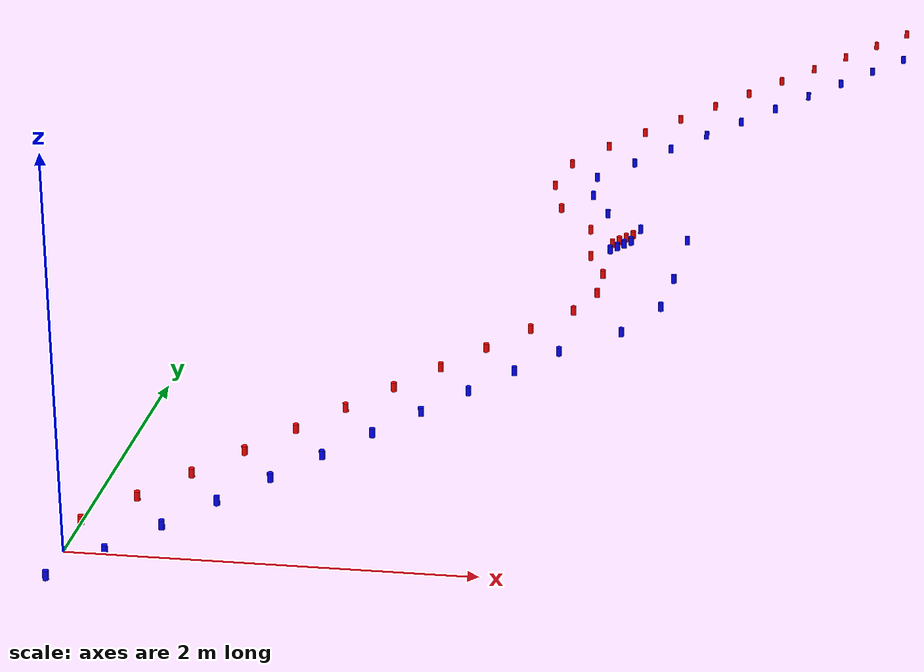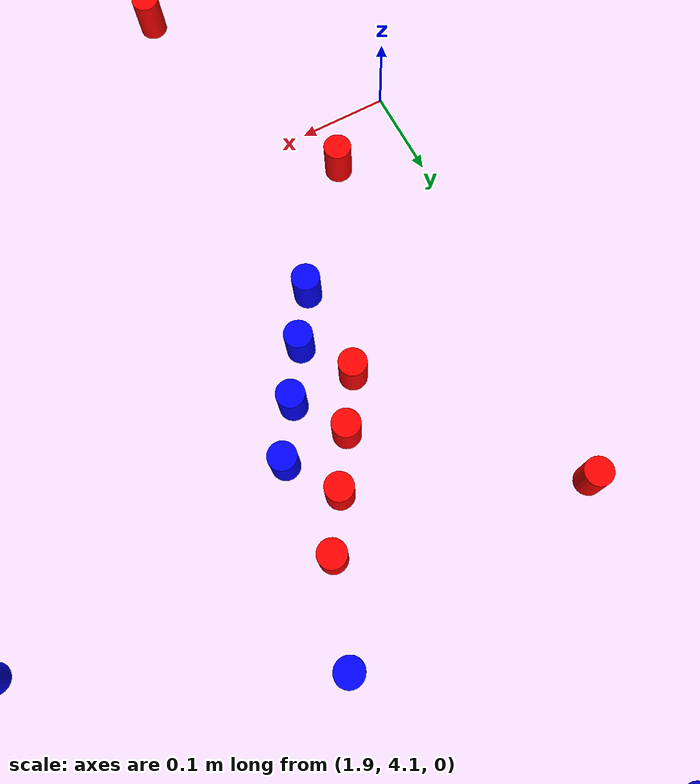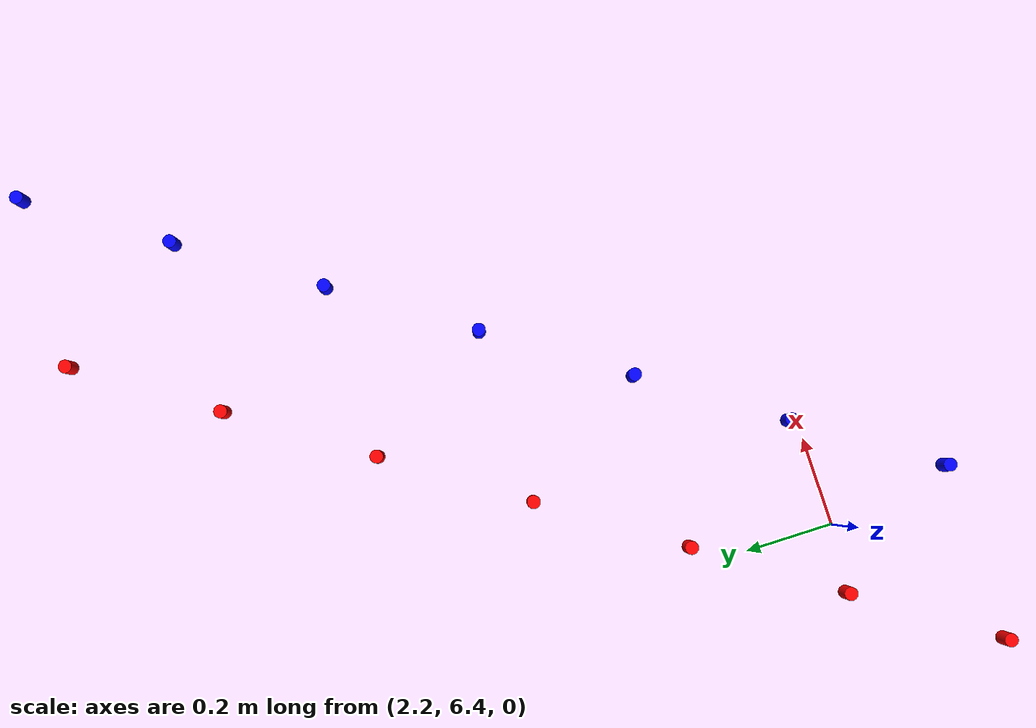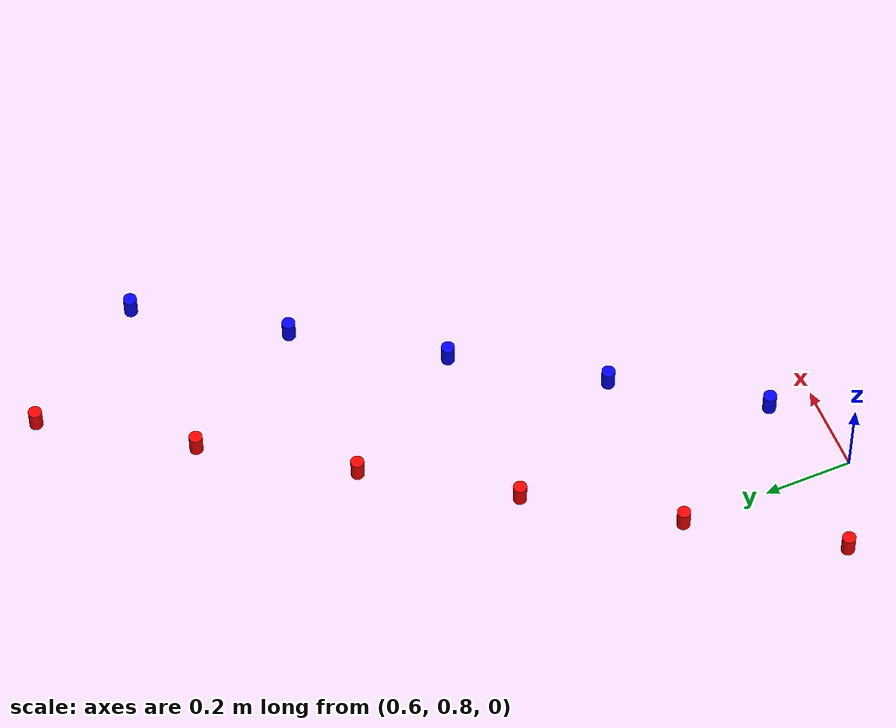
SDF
<?xml version="1.0"?>
<sdf version="1.6">
  <world name="default">

        <model name="left_cone_0">
          <link name="link">
            <pose>0.0 0.3 0.025 0 0 0</pose>
            <collision name="collision">
              <geometry>
                <cylinder>
                  <radius>0.015</radius>
                  <length>0.05</length>
                </cylinder>
              </geometry>
            </collision>
            <visual name="visual">
              <geometry>
                <cylinder>
                  <radius>0.015</radius>
                  <length>0.05</length>
                </cylinder>
              </geometry>
              <material>
                <ambient>1 0 0 1</ambient>
                <diffuse>1 0 0 1</diffuse>
              </material>
            </visual>
          </link>
        </model>

        <model name="right_cone_0">
          <link name="link">
            <pose>0.0 -0.3 0.025 0 0 0</pose>
            <collision name="collision">
              <geometry>
                <cylinder>
                  <radius>0.015</radius>
                  <length>0.05</length>
                </cylinder>
              </geometry>
            </collision>
            <visual name="visual">
              <geometry>
                <cylinder>
                  <radius>0.015</radius>
                  <length>0.05</length>
                </cylinder>
              </geometry>
              <material>
                <ambient>0 0 1 1</ambient>
                <diffuse>0 0 1 1</diffuse>
              </material>
            </visual>
          </link>
        </model>

        <model name="left_cone_1">
          <link name="link">
            <pose>0.2 0.6 0.025 0 0 0</pose>
            <collision name="collision">
              <geometry>
                <cylinder>
                  <radius>0.015</radius>
                  <length>0.05</length>
                </cylinder>
              </geometry>
            </collision>
            <visual name="visual">
              <geometry>
                <cylinder>
                  <radius>0.015</radius>
                  <length>0.05</length>
                </cylinder>
              </geometry>
              <material>
                <ambient>1 0 0 1</ambient>
                <diffuse>1 0 0 1</diffuse>
              </material>
            </visual>
          </link>
        </model>

        <model name="right_cone_1">
          <link name="link">
            <pose>0.2 0.0 0.025 0 0 0</pose>
            <collision name="collision">
              <geometry>
                <cylinder>
                  <radius>0.015</radius>
                  <length>0.05</length>
                </cylinder>
              </geometry>
            </collision>
            <visual name="visual">
              <geometry>
                <cylinder>
                  <radius>0.015</radius>
                  <length>0.05</length>
                </cylinder>
              </geometry>
              <material>
                <ambient>0 0 1 1</ambient>
                <diffuse>0 0 1 1</diffuse>
              </material>
            </visual>
          </link>
        </model>

        <model name="left_cone_2">
          <link name="link">
            <pose>0.4 0.8999999999999999 0.025 0 0 0</pose>
            <collision name="collision">
              <geometry>
                <cylinder>
                  <radius>0.015</radius>
                  <length>0.05</length>
                </cylinder>
              </geometry>
            </collision>
            <visual name="visual">
              <geometry>
                <cylinder>
                  <radius>0.015</radius>
                  <length>0.05</length>
                </cylinder>
              </geometry>
              <material>
                <ambient>1 0 0 1</ambient>
                <diffuse>1 0 0 1</diffuse>
              </material>
            </visual>
          </link>
        </model>

        <model name="right_cone_2">
          <link name="link">
            <pose>0.4 0.3 0.025 0 0 0</pose>
            <collision name="collision">
              <geometry>
                <cylinder>
                  <radius>0.015</radius>
                  <length>0.05</length>
                </cylinder>
              </geometry>
            </collision>
            <visual name="visual">
              <geometry>
                <cylinder>
                  <radius>0.015</radius>
                  <length>0.05</length>
                </cylinder>
              </geometry>
              <material>
                <ambient>0 0 1 1</ambient>
                <diffuse>0 0 1 1</diffuse>
              </material>
            </visual>
          </link>
        </model>

        <model name="left_cone_3">
          <link name="link">
            <pose>0.6000000000000001 1.2 0.025 0 0 0</pose>
            <collision name="collision">
              <geometry>
                <cylinder>
                  <radius>0.015</radius>
                  <length>0.05</length>
                </cylinder>
              </geometry>
            </collision>
            <visual name="visual">
              <geometry>
                <cylinder>
                  <radius>0.015</radius>
                  <length>0.05</length>
                </cylinder>
              </geometry>
              <material>
                <ambient>1 0 0 1</ambient>
                <diffuse>1 0 0 1</diffuse>
              </material>
            </visual>
          </link>
        </model>

        <model name="right_cone_3">
          <link name="link">
            <pose>0.6000000000000001 0.5999999999999999 0.025 0 0 0</pose>
            <collision name="collision">
              <geometry>
                <cylinder>
                  <radius>0.015</radius>
                  <length>0.05</length>
                </cylinder>
              </geometry>
            </collision>
            <visual name="visual">
              <geometry>
                <cylinder>
                  <radius>0.015</radius>
                  <length>0.05</length>
                </cylinder>
              </geometry>
              <material>
                <ambient>0 0 1 1</ambient>
                <diffuse>0 0 1 1</diffuse>
              </material>
            </visual>
          </link>
        </model>

        <model name="left_cone_4">
          <link name="link">
            <pose>0.8 1.5 0.025 0 0 0</pose>
            <collision name="collision">
              <geometry>
                <cylinder>
                  <radius>0.015</radius>
                  <length>0.05</length>
                </cylinder>
              </geometry>
            </collision>
            <visual name="visual">
              <geometry>
                <cylinder>
                  <radius>0.015</radius>
                  <length>0.05</length>
                </cylinder>
              </geometry>
              <material>
                <ambient>1 0 0 1</ambient>
                <diffuse>1 0 0 1</diffuse>
              </material>
            </visual>
          </link>
        </model>

        <model name="right_cone_4">
          <link name="link">
            <pose>0.8 0.8999999999999999 0.025 0 0 0</pose>
            <collision name="collision">
              <geometry>
                <cylinder>
                  <radius>0.015</radius>
                  <length>0.05</length>
                </cylinder>
              </geometry>
            </collision>
            <visual name="visual">
              <geometry>
                <cylinder>
                  <radius>0.015</radius>
                  <length>0.05</length>
                </cylinder>
              </geometry>
              <material>
                <ambient>0 0 1 1</ambient>
                <diffuse>0 0 1 1</diffuse>
              </material>
            </visual>
          </link>
        </model>

        <model name="left_cone_5">
          <link name="link">
            <pose>1.0 1.8 0.025 0 0 0</pose>
            <collision name="collision">
              <geometry>
                <cylinder>
                  <radius>0.015</radius>
                  <length>0.05</length>
                </cylinder>
              </geometry>
            </collision>
            <visual name="visual">
              <geometry>
                <cylinder>
                  <radius>0.015</radius>
                  <length>0.05</length>
                </cylinder>
              </geometry>
              <material>
                <ambient>1 0 0 1</ambient>
                <diffuse>1 0 0 1</diffuse>
              </material>
            </visual>
          </link>
        </model>

        <model name="right_cone_5">
          <link name="link">
            <pose>1.0 1.2 0.025 0 0 0</pose>
            <collision name="collision">
              <geometry>
                <cylinder>
                  <radius>0.015</radius>
                  <length>0.05</length>
                </cylinder>
              </geometry>
            </collision>
            <visual name="visual">
              <geometry>
                <cylinder>
                  <radius>0.015</radius>
                  <length>0.05</length>
                </cylinder>
              </geometry>
              <material>
                <ambient>0 0 1 1</ambient>
                <diffuse>0 0 1 1</diffuse>
              </material>
            </visual>
          </link>
        </model>

        <model name="left_cone_6">
          <link name="link">
            <pose>1.2 2.1 0.025 0 0 0</pose>
            <collision name="collision">
              <geometry>
                <cylinder>
                  <radius>0.015</radius>
                  <length>0.05</length>
                </cylinder>
              </geometry>
            </collision>
            <visual name="visual">
              <geometry>
                <cylinder>
                  <radius>0.015</radius>
                  <length>0.05</length>
                </cylinder>
              </geometry>
              <material>
                <ambient>1 0 0 1</ambient>
                <diffuse>1 0 0 1</diffuse>
              </material>
            </visual>
          </link>
        </model>

        <model name="right_cone_6">
          <link name="link">
            <pose>1.2 1.5 0.025 0 0 0</pose>
            <collision name="collision">
              <geometry>
                <cylinder>
                  <radius>0.015</radius>
                  <length>0.05</length>
                </cylinder>
              </geometry>
            </collision>
            <visual name="visual">
              <geometry>
                <cylinder>
                  <radius>0.015</radius>
                  <length>0.05</length>
                </cylinder>
              </geometry>
              <material>
                <ambient>0 0 1 1</ambient>
                <diffuse>0 0 1 1</diffuse>
              </material>
            </visual>
          </link>
        </model>

        <model name="left_cone_7">
          <link name="link">
            <pose>1.4 2.4 0.025 0 0 0</pose>
            <collision name="collision">
              <geometry>
                <cylinder>
                  <radius>0.015</radius>
                  <length>0.05</length>
                </cylinder>
              </geometry>
            </collision>
            <visual name="visual">
              <geometry>
                <cylinder>
                  <radius>0.015</radius>
                  <length>0.05</length>
                </cylinder>
              </geometry>
              <material>
                <ambient>1 0 0 1</ambient>
                <diffuse>1 0 0 1</diffuse>
              </material>
            </visual>
          </link>
        </model>

        <model name="right_cone_7">
          <link name="link">
            <pose>1.4 1.8 0.025 0 0 0</pose>
            <collision name="collision">
              <geometry>
                <cylinder>
                  <radius>0.015</radius>
                  <length>0.05</length>
                </cylinder>
              </geometry>
            </collision>
            <visual name="visual">
              <geometry>
                <cylinder>
                  <radius>0.015</radius>
                  <length>0.05</length>
                </cylinder>
              </geometry>
              <material>
                <ambient>0 0 1 1</ambient>
                <diffuse>0 0 1 1</diffuse>
              </material>
            </visual>
          </link>
        </model>

        <model name="left_cone_8">
          <link name="link">
            <pose>1.5999999999999999 2.6999999999999997 0.025 0 0 0</pose>
            <collision name="collision">
              <geometry>
                <cylinder>
                  <radius>0.015</radius>
                  <length>0.05</length>
                </cylinder>
              </geometry>
            </collision>
            <visual name="visual">
              <geometry>
                <cylinder>
                  <radius>0.015</radius>
                  <length>0.05</length>
                </cylinder>
              </geometry>
              <material>
                <ambient>1 0 0 1</ambient>
                <diffuse>1 0 0 1</diffuse>
              </material>
            </visual>
          </link>
        </model>

        <model name="right_cone_8">
          <link name="link">
            <pose>1.5999999999999999 2.1 0.025 0 0 0</pose>
            <collision name="collision">
              <geometry>
                <cylinder>
                  <radius>0.015</radius>
                  <length>0.05</length>
                </cylinder>
              </geometry>
            </collision>
            <visual name="visual">
              <geometry>
                <cylinder>
                  <radius>0.015</radius>
                  <length>0.05</length>
                </cylinder>
              </geometry>
              <material>
                <ambient>0 0 1 1</ambient>
                <diffuse>0 0 1 1</diffuse>
              </material>
            </visual>
          </link>
        </model>

        <model name="left_cone_9">
          <link name="link">
            <pose>1.7999999999999998 2.9999999999999996 0.025 0 0 0</pose>
            <collision name="collision">
              <geometry>
                <cylinder>
                  <radius>0.015</radius>
                  <length>0.05</length>
                </cylinder>
              </geometry>
            </collision>
            <visual name="visual">
              <geometry>
                <cylinder>
                  <radius>0.015</radius>
                  <length>0.05</length>
                </cylinder>
              </geometry>
              <material>
                <ambient>1 0 0 1</ambient>
                <diffuse>1 0 0 1</diffuse>
              </material>
            </visual>
          </link>
        </model>

        <model name="right_cone_9">
          <link name="link">
            <pose>1.7999999999999998 2.4 0.025 0 0 0</pose>
            <collision name="collision">
              <geometry>
                <cylinder>
                  <radius>0.015</radius>
                  <length>0.05</length>
                </cylinder>
              </geometry>
            </collision>
            <visual name="visual">
              <geometry>
                <cylinder>
                  <radius>0.015</radius>
                  <length>0.05</length>
                </cylinder>
              </geometry>
              <material>
                <ambient>0 0 1 1</ambient>
                <diffuse>0 0 1 1</diffuse>
              </material>
            </visual>
          </link>
        </model>

    <model name="left_cone_10">
      <link name="link">
        <pose>1.9999999999999998 3.2999999999999994 0.025 0 0 0</pose>
        <collision name="collision">
          <geometry>
            <cylinder>
              <radius>0.015</radius>
              <length>0.05</length>
            </cylinder>
          </geometry>
        </collision>
        <visual name="visual">
          <geometry>
            <cylinder>
              <radius>0.015</radius>
              <length>0.05</length>
            </cylinder>
          </geometry>
          <material>
            <ambient>1 0 0 1</ambient>
            <diffuse>1 0 0 1</diffuse>
          </material>
        </visual>
      </link>
    </model>

    <model name="right_cone_10">
      <link name="link">
        <pose>1.9999999999999998 2.6999999999999997 0.025 0 0 0</pose>
        <collision name="collision">
          <geometry>
            <cylinder>
              <radius>0.015</radius>
              <length>0.05</length>
            </cylinder>
          </geometry>
        </collision>
        <visual name="visual">
          <geometry>
            <cylinder>
              <radius>0.015</radius>
              <length>0.05</length>
            </cylinder>
          </geometry>
          <material>
            <ambient>0 0 1 1</ambient>
            <diffuse>0 0 1 1</diffuse>
          </material>
        </visual>
      </link>
    </model>

    <model name="left_cone_11">
      <link name="link">
        <pose>2.097393957002299 3.5819077862357718 0.025 0 0 0</pose>
        <collision name="collision">
          <geometry>
            <cylinder>
              <radius>0.015</radius>
              <length>0.05</length>
            </cylinder>
          </geometry>
        </collision>
        <visual name="visual">
          <geometry>
            <cylinder>
              <radius>0.015</radius>
              <length>0.05</length>
            </cylinder>
          </geometry>
          <material>
            <ambient>1 0 0 1</ambient>
            <diffuse>1 0 0 1</diffuse>
          </material>
        </visual>
      </link>
    </model>

    <model name="right_cone_11">
      <link name="link">
        <pose>2.3026060429977004 3.018092213764227 0.025 0 0 0</pose>
        <collision name="collision">
          <geometry>
            <cylinder>
              <radius>0.015</radius>
              <length>0.05</length>
            </cylinder>
          </geometry>
        </collision>
        <visual name="visual">
          <geometry>
            <cylinder>
              <radius>0.015</radius>
              <length>0.05</length>
            </cylinder>
          </geometry>
          <material>
            <ambient>0 0 1 1</ambient>
            <diffuse>0 0 1 1</diffuse>
          </material>
        </visual>
      </link>
    </model>

    <model name="left_cone_12">
      <link name="link">
        <pose>2.0924961982535186 3.880125147836599 0.025 0 0 0</pose>
        <collision name="collision">
          <geometry>
            <cylinder>
              <radius>0.015</radius>
              <length>0.05</length>
            </cylinder>
          </geometry>
        </collision>
        <visual name="visual">
          <geometry>
            <cylinder>
              <radius>0.015</radius>
              <length>0.05</length>
            </cylinder>
          </geometry>
          <material>
            <ambient>1 0 0 1</ambient>
            <diffuse>1 0 0 1</diffuse>
          </material>
        </visual>
      </link>
    </model>

    <model name="right_cone_12">
      <link name="link">
        <pose>2.4781687640654426 3.4204984819652124 0.025 0 0 0</pose>
        <collision name="collision">
          <geometry>
            <cylinder>
              <radius>0.015</radius>
              <length>0.05</length>
            </cylinder>
          </geometry>
        </collision>
        <visual name="visual">
          <geometry>
            <cylinder>
              <radius>0.015</radius>
              <length>0.05</length>
            </cylinder>
          </geometry>
          <material>
            <ambient>0 0 1 1</ambient>
            <diffuse>0 0 1 1</diffuse>
          </material>
        </visual>
      </link>
    </model>

    <model name="left_cone_13">
      <link name="link">
        <pose>1.9858974657419828 4.158682669773907 0.025 0 0 0</pose>
        <collision name="collision">
          <geometry>
            <cylinder>
              <radius>0.015</radius>
              <length>0.05</length>
            </cylinder>
          </geometry>
        </collision>
        <visual name="visual">
          <geometry>
            <cylinder>
              <radius>0.015</radius>
              <length>0.05</length>
            </cylinder>
          </geometry>
          <material>
            <ambient>1 0 0 1</ambient>
            <diffuse>1 0 0 1</diffuse>
          </material>
        </visual>
      </link>
    </model>

    <model name="right_cone_13">
      <link name="link">
        <pose>2.505512708012646 3.858682669773907 0.025 0 0 0</pose>
        <collision name="collision">
          <geometry>
            <cylinder>
              <radius>0.015</radius>
              <length>0.05</length>
            </cylinder>
          </geometry>
        </collision>
        <visual name="visual">
          <geometry>
            <cylinder>
              <radius>0.015</radius>
              <length>0.05</length>
            </cylinder>
          </geometry>
          <material>
            <ambient>0 0 1 1</ambient>
            <diffuse>0 0 1 1</diffuse>
          </material>
        </visual>
      </link>
    </model>

        <model name="left_cone_14">
          <link name="link">
            <pose>2.085897465741983 4.383982203830874 0.025 0 0 0</pose>
            <collision name="collision">
              <geometry>
                <cylinder>
                  <radius>0.015</radius>
                  <length>0.05</length>
                </cylinder>
              </geometry>
            </collision>
            <visual name="visual">
              <geometry>
                <cylinder>
                  <radius>0.015</radius>
                  <length>0.05</length>
                </cylinder>
              </geometry>
              <material>
                <ambient>1 0 0 1</ambient>
                <diffuse>1 0 0 1</diffuse>
              </material>
            </visual>
          </link>
        </model>

        <model name="right_cone_14">
          <link name="link">
            <pose>2.085897465741983 4.279793297230716 0.025 0 0 0</pose>
            <collision name="collision">
              <geometry>
                <cylinder>
                  <radius>0.015</radius>
                  <length>0.05</length>
                </cylinder>
              </geometry>
            </collision>
            <visual name="visual">
              <geometry>
                <cylinder>
                  <radius>0.015</radius>
                  <length>0.05</length>
                </cylinder>
              </geometry>
              <material>
                <ambient>0 0 1 1</ambient>
                <diffuse>0 0 1 1</diffuse>
              </material>
            </visual>
          </link>
        </model>

        <model name="left_cone_15">
          <link name="link">
            <pose>2.120627101275369 4.436076657130952 0.025 0 0 0</pose>
            <collision name="collision">
              <geometry>
                <cylinder>
                  <radius>0.015</radius>
                  <length>0.05</length>
                </cylinder>
              </geometry>
            </collision>
            <visual name="visual">
              <geometry>
                <cylinder>
                  <radius>0.015</radius>
                  <length>0.05</length>
                </cylinder>
              </geometry>
              <material>
                <ambient>1 0 0 1</ambient>
                <diffuse>1 0 0 1</diffuse>
              </material>
            </visual>
          </link>
        </model>

        <model name="right_cone_15">
          <link name="link">
            <pose>2.120627101275369 4.331887750530795 0.025 0 0 0</pose>
            <collision name="collision">
              <geometry>
                <cylinder>
                  <radius>0.015</radius>
                  <length>0.05</length>
                </cylinder>
              </geometry>
            </collision>
            <visual name="visual">
              <geometry>
                <cylinder>
                  <radius>0.015</radius>
                  <length>0.05</length>
                </cylinder>
              </geometry>
              <material>
                <ambient>0 0 1 1</ambient>
                <diffuse>0 0 1 1</diffuse>
              </material>
            </visual>
          </link>
        </model>

        <model name="left_cone_16">
          <link name="link">
            <pose>2.1553567368087547 4.488171110431031 0.025 0 0 0</pose>
            <collision name="collision">
              <geometry>
                <cylinder>
                  <radius>0.015</radius>
                  <length>0.05</length>
                </cylinder>
              </geometry>
            </collision>
            <visual name="visual">
              <geometry>
                <cylinder>
                  <radius>0.015</radius>
                  <length>0.05</length>
                </cylinder>
              </geometry>
              <material>
                <ambient>1 0 0 1</ambient>
                <diffuse>1 0 0 1</diffuse>
              </material>
            </visual>
          </link>
        </model>

        <model name="right_cone_16">
          <link name="link">
            <pose>2.1553567368087547 4.383982203830874 0.025 0 0 0</pose>
            <collision name="collision">
              <geometry>
                <cylinder>
                  <radius>0.015</radius>
                  <length>0.05</length>
                </cylinder>
              </geometry>
            </collision>
            <visual name="visual">
              <geometry>
                <cylinder>
                  <radius>0.015</radius>
                  <length>0.05</length>
                </cylinder>
              </geometry>
              <material>
                <ambient>0 0 1 1</ambient>
                <diffuse>0 0 1 1</diffuse>
              </material>
            </visual>
          </link>
        </model>

        <model name="left_cone_17">
          <link name="link">
            <pose>2.1900863723421407 4.54026556373111 0.025 0 0 0</pose>
            <collision name="collision">
              <geometry>
                <cylinder>
                  <radius>0.015</radius>
                  <length>0.05</length>
                </cylinder>
              </geometry>
            </collision>
            <visual name="visual">
              <geometry>
                <cylinder>
                  <radius>0.015</radius>
                  <length>0.05</length>
                </cylinder>
              </geometry>
              <material>
                <ambient>1 0 0 1</ambient>
                <diffuse>1 0 0 1</diffuse>
              </material>
            </visual>
          </link>
        </model>

        <model name="right_cone_17">
          <link name="link">
            <pose>2.1900863723421407 4.436076657130952 0.025 0 0 0</pose>
            <collision name="collision">
              <geometry>
                <cylinder>
                  <radius>0.015</radius>
                  <length>0.05</length>
                </cylinder>
              </geometry>
            </collision>
            <visual name="visual">
              <geometry>
                <cylinder>
                  <radius>0.015</radius>
                  <length>0.05</length>
                </cylinder>
              </geometry>
              <material>
                <ambient>0 0 1 1</ambient>
                <diffuse>0 0 1 1</diffuse>
              </material>
            </visual>
          </link>
        </model>

    <model name="left_cone_18">
      <link name="link">
        <pose>1.9293736819718643 4.592360017031188 0.025 0 0 0</pose>
        <collision name="collision">
          <geometry>
            <cylinder>
              <radius>0.015</radius>
              <length>0.05</length>
            </cylinder>
          </geometry>
        </collision>
        <visual name="visual">
          <geometry>
            <cylinder>
              <radius>0.015</radius>
              <length>0.05</length>
            </cylinder>
          </geometry>
          <material>
            <ambient>1 0 0 1</ambient>
            <diffuse>1 0 0 1</diffuse>
          </material>
        </visual>
      </link>
    </model>

    <model name="right_cone_18">
      <link name="link">
        <pose>2.520258333779189 4.488171110431031 0.025 0 0 0</pose>
        <collision name="collision">
          <geometry>
            <cylinder>
              <radius>0.015</radius>
              <length>0.05</length>
            </cylinder>
          </geometry>
        </collision>
        <visual name="visual">
          <geometry>
            <cylinder>
              <radius>0.015</radius>
              <length>0.05</length>
            </cylinder>
          </geometry>
          <material>
            <ambient>0 0 1 1</ambient>
            <diffuse>0 0 1 1</diffuse>
          </material>
        </visual>
      </link>
    </model>

    <model name="left_cone_19">
      <link name="link">
        <pose>1.704295696369919 4.93932156763363 0.025 0 0 0</pose>
        <collision name="collision">
          <geometry>
            <cylinder>
              <radius>0.015</radius>
              <length>0.05</length>
            </cylinder>
          </geometry>
        </collision>
        <visual name="visual">
          <geometry>
            <cylinder>
              <radius>0.015</radius>
              <length>0.05</length>
            </cylinder>
          </geometry>
          <material>
            <ambient>1 0 0 1</ambient>
            <diffuse>1 0 0 1</diffuse>
          </material>
        </visual>
      </link>
    </model>

    <model name="right_cone_19">
      <link name="link">
        <pose>2.223910938640582 4.63932156763363 0.025 0 0 0</pose>
        <collision name="collision">
          <geometry>
            <cylinder>
              <radius>0.015</radius>
              <length>0.05</length>
            </cylinder>
          </geometry>
        </collision>
        <visual name="visual">
          <geometry>
            <cylinder>
              <radius>0.015</radius>
              <length>0.05</length>
            </cylinder>
          </geometry>
          <material>
            <ambient>0 0 1 1</ambient>
            <diffuse>0 0 1 1</diffuse>
          </material>
        </visual>
      </link>
    </model>

    <model name="left_cone_20">
      <link name="link">
        <pose>1.6114594134639573 5.342339981326211 0.025 0 0 0</pose>
        <collision name="collision">
          <geometry>
            <cylinder>
              <radius>0.015</radius>
              <length>0.05</length>
            </cylinder>
          </geometry>
        </collision>
        <visual name="visual">
          <geometry>
            <cylinder>
              <radius>0.015</radius>
              <length>0.05</length>
            </cylinder>
          </geometry>
          <material>
            <ambient>1 0 0 1</ambient>
            <diffuse>1 0 0 1</diffuse>
          </material>
        </visual>
      </link>
    </model>

    <model name="right_cone_20">
      <link name="link">
        <pose>1.9971319792758808 4.882713315454825 0.025 0 0 0</pose>
        <collision name="collision">
          <geometry>
            <cylinder>
              <radius>0.015</radius>
              <length>0.05</length>
            </cylinder>
          </geometry>
        </collision>
        <visual name="visual">
          <geometry>
            <cylinder>
              <radius>0.015</radius>
              <length>0.05</length>
            </cylinder>
          </geometry>
          <material>
            <ambient>0 0 1 1</ambient>
            <diffuse>0 0 1 1</diffuse>
          </material>
        </visual>
      </link>
    </model>

    <model name="left_cone_21">
      <link name="link">
        <pose>1.6620622590900525 5.752805289499292 0.025 0 0 0</pose>
        <collision name="collision">
          <geometry>
            <cylinder>
              <radius>0.015</radius>
              <length>0.05</length>
            </cylinder>
          </geometry>
        </collision>
        <visual name="visual">
          <geometry>
            <cylinder>
              <radius>0.015</radius>
              <length>0.05</length>
            </cylinder>
          </geometry>
          <material>
            <ambient>1 0 0 1</ambient>
            <diffuse>1 0 0 1</diffuse>
          </material>
        </visual>
      </link>
    </model>

    <model name="right_cone_21">
      <link name="link">
        <pose>1.8672743450854534 5.188989717027746 0.025 0 0 0</pose>
        <collision name="collision">
          <geometry>
            <cylinder>
              <radius>0.015</radius>
              <length>0.05</length>
            </cylinder>
          </geometry>
        </collision>
        <visual name="visual">
          <geometry>
            <cylinder>
              <radius>0.015</radius>
              <length>0.05</length>
            </cylinder>
          </geometry>
          <material>
            <ambient>0 0 1 1</ambient>
            <diffuse>0 0 1 1</diffuse>
          </material>
        </visual>
      </link>
    </model>

        <model name="left_cone_22">
          <link name="link">
            <pose>1.8500007832472343 6.121209318164425 0.025 0 0 0</pose>
            <collision name="collision">
              <geometry>
                <cylinder>
                  <radius>0.015</radius>
                  <length>0.05</length>
                </cylinder>
              </geometry>
            </collision>
            <visual name="visual">
              <geometry>
                <cylinder>
                  <radius>0.015</radius>
                  <length>0.05</length>
                </cylinder>
              </geometry>
              <material>
                <ambient>1 0 0 1</ambient>
                <diffuse>1 0 0 1</diffuse>
              </material>
            </visual>
          </link>
        </model>

        <model name="right_cone_22">
          <link name="link">
            <pose>1.8500007832472343 5.521209318164425 0.025 0 0 0</pose>
            <collision name="collision">
              <geometry>
                <cylinder>
                  <radius>0.015</radius>
                  <length>0.05</length>
                </cylinder>
              </geometry>
            </collision>
            <visual name="visual">
              <geometry>
                <cylinder>
                  <radius>0.015</radius>
                  <length>0.05</length>
                </cylinder>
              </geometry>
              <material>
                <ambient>0 0 1 1</ambient>
                <diffuse>0 0 1 1</diffuse>
              </material>
            </visual>
          </link>
        </model>

        <model name="left_cone_23">
          <link name="link">
            <pose>2.0500007832472344 6.421209318164425 0.025 0 0 0</pose>
            <collision name="collision">
              <geometry>
                <cylinder>
                  <radius>0.015</radius>
                  <length>0.05</length>
                </cylinder>
              </geometry>
            </collision>
            <visual name="visual">
              <geometry>
                <cylinder>
                  <radius>0.015</radius>
                  <length>0.05</length>
                </cylinder>
              </geometry>
              <material>
                <ambient>1 0 0 1</ambient>
                <diffuse>1 0 0 1</diffuse>
              </material>
            </visual>
          </link>
        </model>

        <model name="right_cone_23">
          <link name="link">
            <pose>2.0500007832472344 5.821209318164425 0.025 0 0 0</pose>
            <collision name="collision">
              <geometry>
                <cylinder>
                  <radius>0.015</radius>
                  <length>0.05</length>
                </cylinder>
              </geometry>
            </collision>
            <visual name="visual">
              <geometry>
                <cylinder>
                  <radius>0.015</radius>
                  <length>0.05</length>
                </cylinder>
              </geometry>
              <material>
                <ambient>0 0 1 1</ambient>
                <diffuse>0 0 1 1</diffuse>
              </material>
            </visual>
          </link>
        </model>

        <model name="left_cone_24">
          <link name="link">
            <pose>2.2500007832472346 6.721209318164425 0.025 0 0 0</pose>
            <collision name="collision">
              <geometry>
                <cylinder>
                  <radius>0.015</radius>
                  <length>0.05</length>
                </cylinder>
              </geometry>
            </collision>
            <visual name="visual">
              <geometry>
                <cylinder>
                  <radius>0.015</radius>
                  <length>0.05</length>
                </cylinder>
              </geometry>
              <material>
                <ambient>1 0 0 1</ambient>
                <diffuse>1 0 0 1</diffuse>
              </material>
            </visual>
          </link>
        </model>

        <model name="right_cone_24">
          <link name="link">
            <pose>2.2500007832472346 6.121209318164425 0.025 0 0 0</pose>
            <collision name="collision">
              <geometry>
                <cylinder>
                  <radius>0.015</radius>
                  <length>0.05</length>
                </cylinder>
              </geometry>
            </collision>
            <visual name="visual">
              <geometry>
                <cylinder>
                  <radius>0.015</radius>
                  <length>0.05</length>
                </cylinder>
              </geometry>
              <material>
                <ambient>0 0 1 1</ambient>
                <diffuse>0 0 1 1</diffuse>
              </material>
            </visual>
          </link>
        </model>

        <model name="left_cone_25">
          <link name="link">
            <pose>2.450000783247235 7.021209318164424 0.025 0 0 0</pose>
            <collision name="collision">
              <geometry>
                <cylinder>
                  <radius>0.015</radius>
                  <length>0.05</length>
                </cylinder>
              </geometry>
            </collision>
            <visual name="visual">
              <geometry>
                <cylinder>
                  <radius>0.015</radius>
                  <length>0.05</length>
                </cylinder>
              </geometry>
              <material>
                <ambient>1 0 0 1</ambient>
                <diffuse>1 0 0 1</diffuse>
              </material>
            </visual>
          </link>
        </model>

        <model name="right_cone_25">
          <link name="link">
            <pose>2.450000783247235 6.421209318164425 0.025 0 0 0</pose>
            <collision name="collision">
              <geometry>
                <cylinder>
                  <radius>0.015</radius>
                  <length>0.05</length>
                </cylinder>
              </geometry>
            </collision>
            <visual name="visual">
              <geometry>
                <cylinder>
                  <radius>0.015</radius>
                  <length>0.05</length>
                </cylinder>
              </geometry>
              <material>
                <ambient>0 0 1 1</ambient>
                <diffuse>0 0 1 1</diffuse>
              </material>
            </visual>
          </link>
        </model>

        <model name="left_cone_26">
          <link name="link">
            <pose>2.650000783247235 7.321209318164424 0.025 0 0 0</pose>
            <collision name="collision">
              <geometry>
                <cylinder>
                  <radius>0.015</radius>
                  <length>0.05</length>
                </cylinder>
              </geometry>
            </collision>
            <visual name="visual">
              <geometry>
                <cylinder>
                  <radius>0.015</radius>
                  <length>0.05</length>
                </cylinder>
              </geometry>
              <material>
                <ambient>1 0 0 1</ambient>
                <diffuse>1 0 0 1</diffuse>
              </material>
            </visual>
          </link>
        </model>

        <model name="right_cone_26">
          <link name="link">
            <pose>2.650000783247235 6.721209318164425 0.025 0 0 0</pose>
            <collision name="collision">
              <geometry>
                <cylinder>
                  <radius>0.015</radius>
                  <length>0.05</length>
                </cylinder>
              </geometry>
            </collision>
            <visual name="visual">
              <geometry>
                <cylinder>
                  <radius>0.015</radius>
                  <length>0.05</length>
                </cylinder>
              </geometry>
              <material>
                <ambient>0 0 1 1</ambient>
                <diffuse>0 0 1 1</diffuse>
              </material>
            </visual>
          </link>
        </model>

        <model name="left_cone_27">
          <link name="link">
            <pose>2.850000783247235 7.621209318164424 0.025 0 0 0</pose>
            <collision name="collision">
              <geometry>
                <cylinder>
                  <radius>0.015</radius>
                  <length>0.05</length>
                </cylinder>
              </geometry>
            </collision>
            <visual name="visual">
              <geometry>
                <cylinder>
                  <radius>0.015</radius>
                  <length>0.05</length>
                </cylinder>
              </geometry>
              <material>
                <ambient>1 0 0 1</ambient>
                <diffuse>1 0 0 1</diffuse>
              </material>
            </visual>
          </link>
        </model>

        <model name="right_cone_27">
          <link name="link">
            <pose>2.850000783247235 7.021209318164424 0.025 0 0 0</pose>
            <collision name="collision">
              <geometry>
                <cylinder>
                  <radius>0.015</radius>
                  <length>0.05</length>
                </cylinder>
              </geometry>
            </collision>
            <visual name="visual">
              <geometry>
                <cylinder>
                  <radius>0.015</radius>
                  <length>0.05</length>
                </cylinder>
              </geometry>
              <material>
                <ambient>0 0 1 1</ambient>
                <diffuse>0 0 1 1</diffuse>
              </material>
            </visual>
          </link>
        </model>

        <model name="left_cone_28">
          <link name="link">
            <pose>3.0500007832472353 7.921209318164424 0.025 0 0 0</pose>
            <collision name="collision">
              <geometry>
                <cylinder>
                  <radius>0.015</radius>
                  <length>0.05</length>
                </cylinder>
              </geometry>
            </collision>
            <visual name="visual">
              <geometry>
                <cylinder>
                  <radius>0.015</radius>
                  <length>0.05</length>
                </cylinder>
              </geometry>
              <material>
                <ambient>1 0 0 1</ambient>
                <diffuse>1 0 0 1</diffuse>
              </material>
            </visual>
          </link>
        </model>

        <model name="right_cone_28">
          <link name="link">
            <pose>3.0500007832472353 7.321209318164424 0.025 0 0 0</pose>
            <collision name="collision">
              <geometry>
                <cylinder>
                  <radius>0.015</radius>
                  <length>0.05</length>
                </cylinder>
              </geometry>
            </collision>
            <visual name="visual">
              <geometry>
                <cylinder>
                  <radius>0.015</radius>
                  <length>0.05</length>
                </cylinder>
              </geometry>
              <material>
                <ambient>0 0 1 1</ambient>
                <diffuse>0 0 1 1</diffuse>
              </material>
            </visual>
          </link>
        </model>

        <model name="left_cone_29">
          <link name="link">
            <pose>3.2500007832472355 8.221209318164425 0.025 0 0 0</pose>
            <collision name="collision">
              <geometry>
                <cylinder>
                  <radius>0.015</radius>
                  <length>0.05</length>
                </cylinder>
              </geometry>
            </collision>
            <visual name="visual">
              <geometry>
                <cylinder>
                  <radius>0.015</radius>
                  <length>0.05</length>
                </cylinder>
              </geometry>
              <material>
                <ambient>1 0 0 1</ambient>
                <diffuse>1 0 0 1</diffuse>
              </material>
            </visual>
          </link>
        </model>

        <model name="right_cone_29">
          <link name="link">
            <pose>3.2500007832472355 7.621209318164424 0.025 0 0 0</pose>
            <collision name="collision">
              <geometry>
                <cylinder>
                  <radius>0.015</radius>
                  <length>0.05</length>
                </cylinder>
              </geometry>
            </collision>
            <visual name="visual">
              <geometry>
                <cylinder>
                  <radius>0.015</radius>
                  <length>0.05</length>
                </cylinder>
              </geometry>
              <material>
                <ambient>0 0 1 1</ambient>
                <diffuse>0 0 1 1</diffuse>
              </material>
            </visual>
          </link>
        </model>

        <model name="left_cone_30">
          <link name="link">
            <pose>3.4500007832472357 8.521209318164425 0.025 0 0 0</pose>
            <collision name="collision">
              <geometry>
                <cylinder>
                  <radius>0.015</radius>
                  <length>0.05</length>
                </cylinder>
              </geometry>
            </collision>
            <visual name="visual">
              <geometry>
                <cylinder>
                  <radius>0.015</radius>
                  <length>0.05</length>
                </cylinder>
              </geometry>
              <material>
                <ambient>1 0 0 1</ambient>
                <diffuse>1 0 0 1</diffuse>
              </material>
            </visual>
          </link>
        </model>

        <model name="right_cone_30">
          <link name="link">
            <pose>3.4500007832472357 7.921209318164425 0.025 0 0 0</pose>
            <collision name="collision">
              <geometry>
                <cylinder>
                  <radius>0.015</radius>
                  <length>0.05</length>
                </cylinder>
              </geometry>
            </collision>
            <visual name="visual">
              <geometry>
                <cylinder>
                  <radius>0.015</radius>
                  <length>0.05</length>
                </cylinder>
              </geometry>
              <material>
                <ambient>0 0 1 1</ambient>
                <diffuse>0 0 1 1</diffuse>
              </material>
            </visual>
          </link>
        </model>

        <model name="left_cone_31">
          <link name="link">
            <pose>3.650000783247236 8.821209318164426 0.025 0 0 0</pose>
            <collision name="collision">
              <geometry>
                <cylinder>
                  <radius>0.015</radius>
                  <length>0.05</length>
                </cylinder>
              </geometry>
            </collision>
            <visual name="visual">
              <geometry>
                <cylinder>
                  <radius>0.015</radius>
                  <length>0.05</length>
                </cylinder>
              </geometry>
              <material>
                <ambient>1 0 0 1</ambient>
                <diffuse>1 0 0 1</diffuse>
              </material>
            </visual>
          </link>
        </model>

        <model name="right_cone_31">
          <link name="link">
            <pose>3.650000783247236 8.221209318164425 0.025 0 0 0</pose>
            <collision name="collision">
              <geometry>
                <cylinder>
                  <radius>0.015</radius>
                  <length>0.05</length>
                </cylinder>
              </geometry>
            </collision>
            <visual name="visual">
              <geometry>
                <cylinder>
                  <radius>0.015</radius>
                  <length>0.05</length>
                </cylinder>
              </geometry>
              <material>
                <ambient>0 0 1 1</ambient>
                <diffuse>0 0 1 1</diffuse>
              </material>
            </visual>
          </link>
        </model>

  </world>
</sdf>
